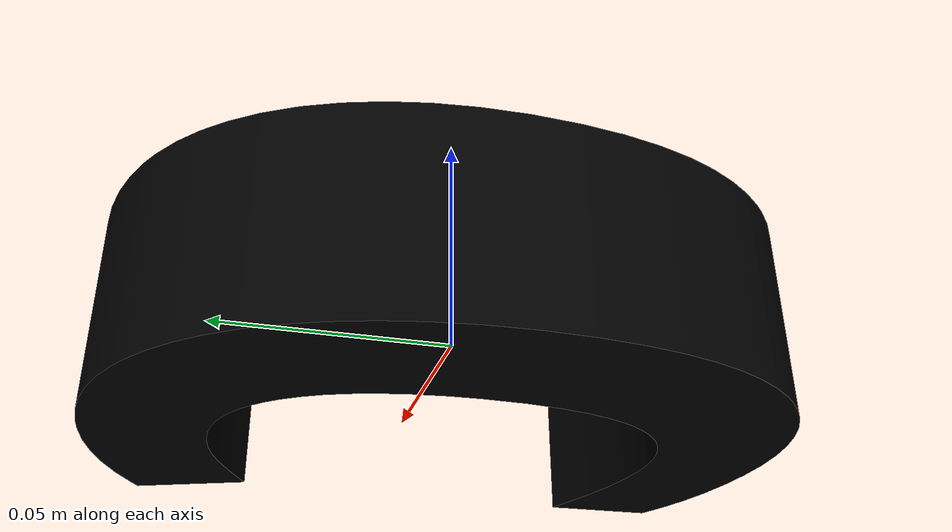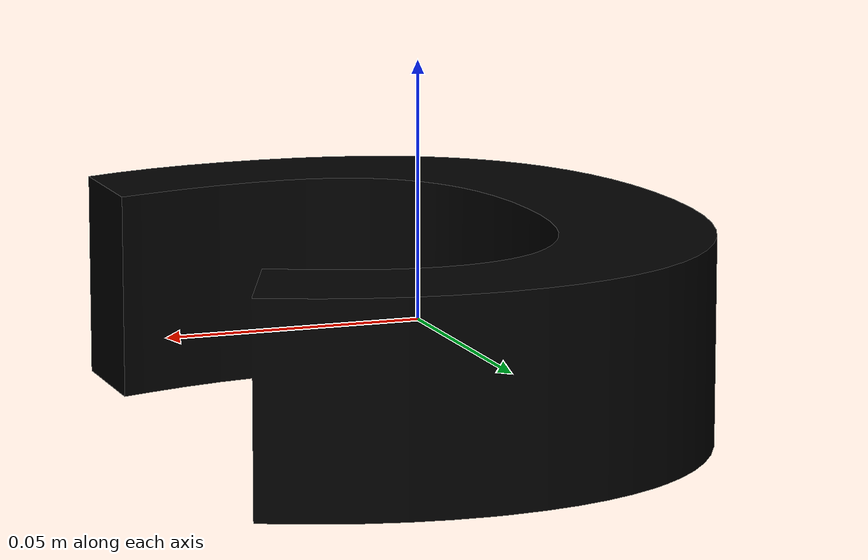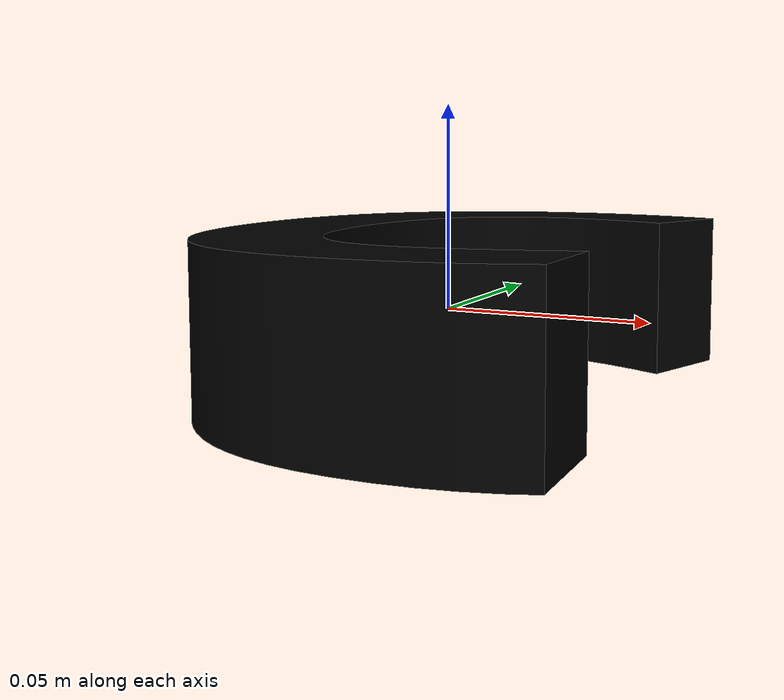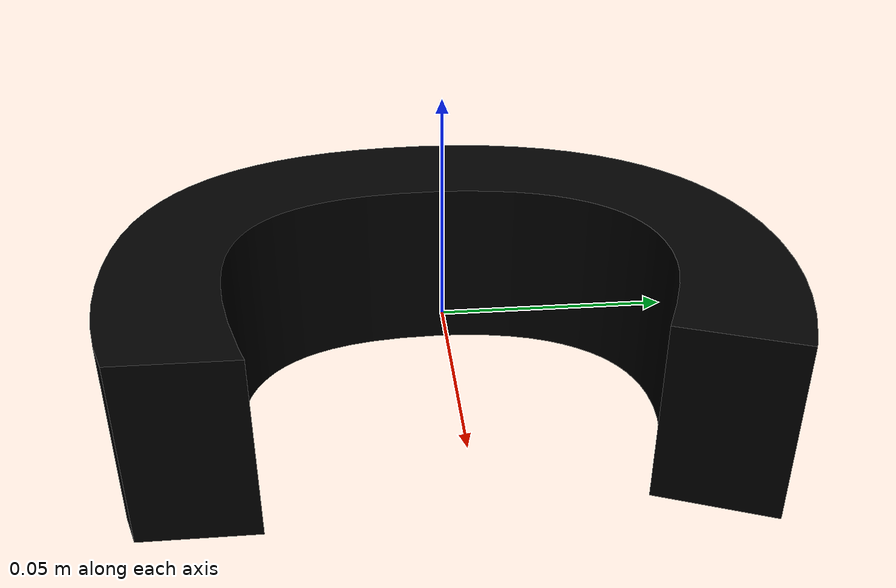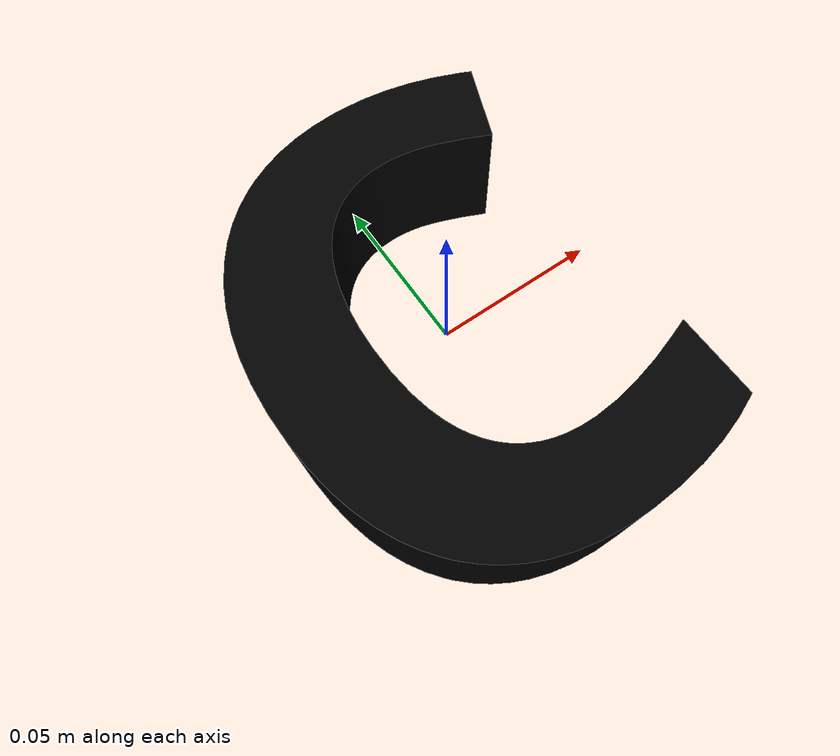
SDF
<?xml version="1.0"?>
<sdf version="1.7">
<!-- This SDF was autogenerated by controller_sdf_generation.py -->
  <model name="anything">
    <link name="smaller_c">
      <inertial>
        <pose>0 0 0 0 0 0</pose>
        <mass>1</mass>
        <inertia>
            <ixx>0.003</ixx>
            <iyy>0.003 </iyy>
            <izz>0.006 </izz>
            <ixy>0.0</ixy>
            <ixz>0.0</ixz>
            <iyz>0.0</iyz>
        </inertia>
      </inertial>
      <visual name="smaller_c">
        <pose>0 0 0 0 0 0</pose>
        <geometry>
          <mesh>
            <uri>smaller_c.obj</uri>
          </mesh>
        </geometry>
        <material>
          <diffuse>0 0 0 1</diffuse>
        </material>
      </visual>
      <collision name="smaller_c_volume">
        <pose>0 0 0 0 0 0</pose>
            <geometry>
          <mesh>
            <uri>smaller_c.obj</uri>
          </mesh>
        </geometry>
        <drake:proximity_properties>
          <drake:compliant_hydroelastic/>
          <drake:hydroelastic_modulus> 3.0e7 </drake:hydroelastic_modulus>
          <drake:mesh_resolution_hint> 0.18 </drake:mesh_resolution_hint>
          <drake:hunt_crossley_dissipation>10</drake:hunt_crossley_dissipation>
          <drake:mu_dynamic>0.3</drake:mu_dynamic>
        </drake:proximity_properties>
      </collision>
      <collision name="corner_nxynz">
        <geometry>
          <sphere>
            <radius>0.001</radius>
          </sphere>
        </geometry>
        <drake:proximity_properties>
        <drake:mu_dynamic>0.3</drake:mu_dynamic>
        </drake:proximity_properties>
        <pose> -0.05308800 0.07192290 -0.02000000 0 0 0</pose>
      </collision>
      <collision name="corner_nxnynz">
        <geometry>
          <sphere>
            <radius>0.001</radius>
          </sphere>
        </geometry>
        <drake:proximity_properties>
        <drake:mu_dynamic>0.3</drake:mu_dynamic>
        </drake:proximity_properties>
        <pose> -0.05308800 -0.07078110 -0.02000000 0 0 0</pose>
      </collision>
      <collision name="corner_xynz">
        <geometry>
          <sphere>
            <radius>0.001</radius>
          </sphere>
        </geometry>
        <drake:proximity_properties>
        <drake:mu_dynamic>0.3</drake:mu_dynamic>
        </drake:proximity_properties>
        <pose> 0.05267150 0.00057090 -0.02000000 0 0 0</pose>
      </collision>

    </link>
  </model>
</sdf>
